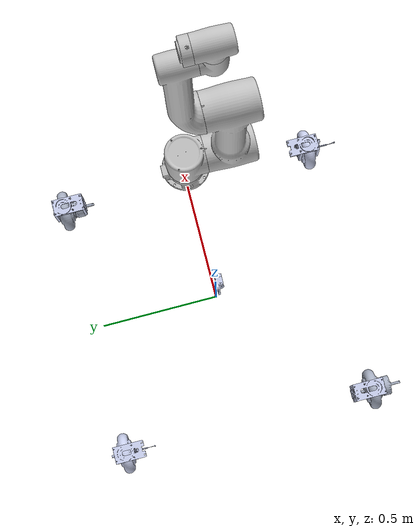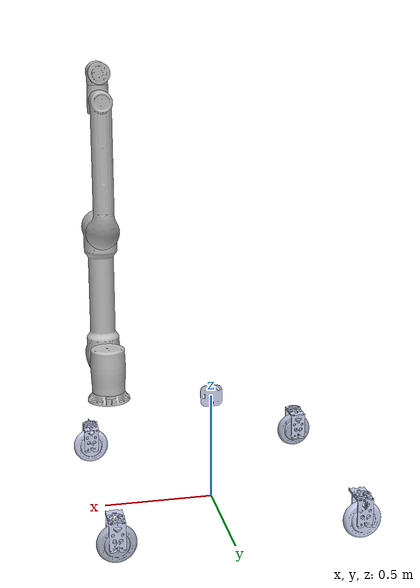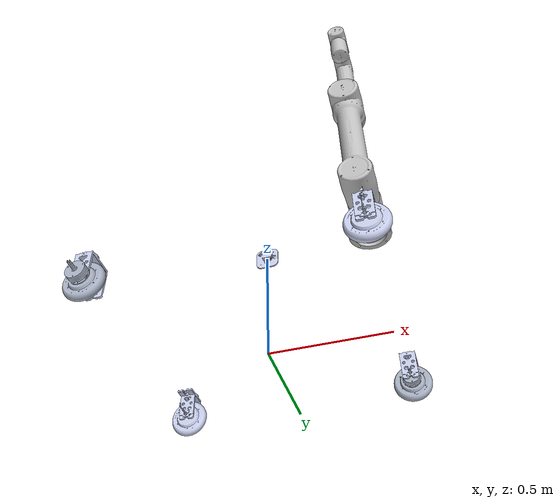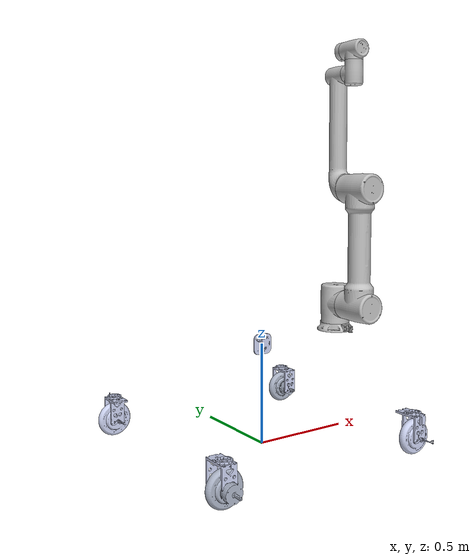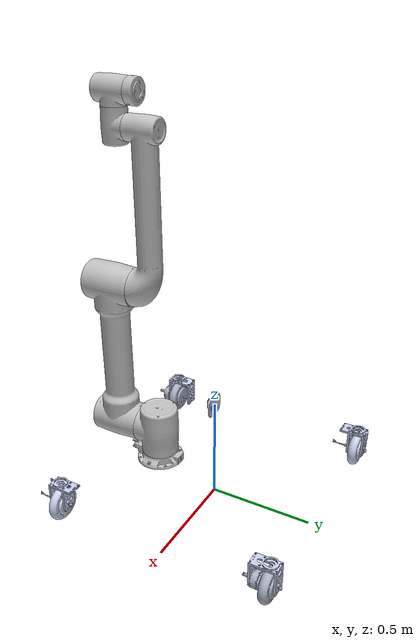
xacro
<?xml version="1.0" encoding="utf-8"?>
<robot
  name="robot_model" xmlns:xacro="http://ros.org/wiki/xacro">

  <link name="base_footprint">
  </link>

  <joint name="base_footprint2base_link" type="fixed">
    <origin xyz="0 0 0.5" rpy="0 0 0"/>
    <parent link="base_footprint"/>
    <child link="base_link"/>
    <axis xyz="0 0 0"/>
  </joint>

  <link
    name="base_link">
    <inertial>
      <origin
        xyz="-0.00893431238084795 -0.00410685218850798 -0.126974415298966"
        rpy="0 0 0" />
      <mass
        value="60.6584049873887" />
      <inertia
        ixx="1.93063361069271"
        ixy="-1.08148006992139E-05"
        ixz="-0.000147443513716209"
        iyy="2.82233947881137"
        iyz="3.80713670524455E-06"
        izz="4.57189084727919" />
    </inertial>
    <visual>
      <origin
        xyz="0 0 0"
        rpy="0 0 0" />
      <geometry>
        <mesh
          filename="package://robot_model/meshes/base_link.STL" />
      </geometry>
      <material
        name="">
        <color
          rgba="0.792156862745098 0.819607843137255 0.933333333333333 1" />
      </material>
    </visual>
    <collision>
      <origin
        xyz="0 0 0"
        rpy="0 0 0" />
      <geometry>
        <mesh
          filename="package://robot_model/meshes/base_link.STL" />
      </geometry>
    </collision>
  </link>
  <link
    name="arm_link0">
    <inertial>
      <origin
        xyz="-1.85892599924298E-07 -0.00115098665543706 0.0188300807306432"
        rpy="0 0 0" />
      <mass
        value="0.655152540803042" />
      <inertia
        ixx="0.00156276083969846"
        ixy="-3.36599648618771E-08"
        ixz="-1.62894681484622E-10"
        iyy="0.00121051829401654"
        iyz="-5.21192954217806E-06"
        izz="0.00262778163467102" />
    </inertial>
    <visual>
      <origin
        xyz="0 0 0"
        rpy="0 0 0" />
      <geometry>
        <mesh
          filename="package://robot_model/meshes/arm_link0.STL" />
      </geometry>
      <material
        name="">
        <color
          rgba="0.752941176470588 0.752941176470588 0.752941176470588 1" />
      </material>
    </visual>
    <collision>
      <origin
        xyz="0 0 0"
        rpy="0 0 0" />
      <geometry>
        <mesh
          filename="package://robot_model/meshes/arm_link0.STL" />
      </geometry>
    </collision>
  </link>
  <joint
    name="arm_joint0"
    type="fixed">
    <origin
      xyz="0.469251651718155 0 0.02"
      rpy="0 0 0" />
    <parent
      link="base_link" />
    <child
      link="arm_link0" />
    <axis
      xyz="0 0 0" />
  </joint>
  <link
    name="arm_link1">
    <inertial>
      <origin
        xyz="6.56593143250062E-06 -0.00217986182575047 -0.00131736708112296"
        rpy="0 0 0" />
      <mass
        value="3.60449209211676" />
      <inertia
        ixx="0.0126654074039028"
        ixy="-2.62089433741316E-07"
        ixz="-1.31830270669369E-07"
        iyy="0.0127154549514285"
        iyz="0.000389410015223875"
        izz="0.0111093940722602" />
    </inertial>
    <visual>
      <origin
        xyz="0 0 0"
        rpy="0 0 0" />
      <geometry>
        <mesh
          filename="package://robot_model/meshes/arm_link1.STL" />
      </geometry>
      <material
        name="">
        <color
          rgba="0.752941176470588 0.752941176470588 0.752941176470588 1" />
      </material>
    </visual>
    <collision>
      <origin
        xyz="0 0 0"
        rpy="0 0 0" />
      <geometry>
        <mesh
          filename="package://robot_model/meshes/arm_link1.STL" />
      </geometry>
    </collision>
  </link>
  <joint
    name="arm_joint1"
    type="revolute">
    <origin
      xyz="0 0 0.14261"
      rpy="0 0 0" />
    <parent
      link="arm_link0" />
    <child
      link="arm_link1" />
    <axis
      xyz="0 0 -1" />
    <limit
      lower="-4.71"
      upper="4.71"
      effort="160"
      velocity="2.09" />
  </joint>
  <link
    name="arm_link2">
    <inertial>
      <origin
        xyz="0.297295860029644 -7.22116929952055E-06 0.181245687804858"
        rpy="0 0 0" />
      <mass
        value="12.2380791922919" />
      <inertia
        ixx="0.0343806292140874"
        ixy="5.21480259951953E-07"
        ixz="-4.57209805955594E-06"
        iyy="0.119109154320758"
        iyz="3.32647013373687E-10"
        izz="0.116279406836501" />
    </inertial>
    <visual>
      <origin
        xyz="0 0 0"
        rpy="0 0 0" />
      <geometry>
        <mesh
          filename="package://robot_model/meshes/arm_link2.STL" />
      </geometry>
      <material
        name="">
        <color
          rgba="0.752941176470588 0.752941176470588 0.752941176470588 1" />
      </material>
    </visual>
    <collision>
      <origin
        xyz="0 0 0"
        rpy="0 0 0" />
      <geometry>
        <mesh
          filename="package://robot_model/meshes/arm_link2.STL" />
      </geometry>
    </collision>
  </link>
  <joint
    name="arm_joint2"
    type="revolute">
    <origin
      xyz="0 0 0"
      rpy="1.5708 -1.5708 0" />
    <parent
      link="arm_link1" />
    <child
      link="arm_link2" />
    <axis
      xyz="0 0 -1" />
    <limit
      lower="-1.48"
      upper="4.63"
      effort="159.24"
      velocity="2.09" />
  </joint>
  <link
    name="arm_link3">
    <inertial>
      <origin
        xyz="0.279323373643594 -2.05269174754497E-05 -0.0168804752155597"
        rpy="0 0 0" />
      <mass
        value="4.95956568648557" />
      <inertia
        ixx="0.0070392604484286"
        ixy="-1.10355720175606E-06"
        ixz="-0.00581502732927868"
        iyy="0.121787936376111"
        iyz="-1.14663299532286E-07"
        izz="0.121496286554897" />
    </inertial>
    <visual>
      <origin
        xyz="0 0 0"
        rpy="0 0 0" />
      <geometry>
        <mesh
          filename="package://robot_model/meshes/arm_link3.STL" />
      </geometry>
      <material
        name="">
        <color
          rgba="0.752941176470588 0.752941176470588 0.752941176470588 1" />
      </material>
    </visual>
    <collision>
      <origin
        xyz="0 0 0"
        rpy="0 0 0" />
      <geometry>
        <mesh
          filename="package://robot_model/meshes/arm_link3.STL" />
      </geometry>
    </collision>
  </link>
  <joint
    name="arm_joint3"
    type="revolute">
    <origin
      xyz="0.59497 -2.3063E-05 0"
      rpy="-3.1416 0 0" />
    <parent
      link="arm_link2" />
    <child
      link="arm_link3" />
    <axis
      xyz="0 0 1" />
    <limit
      lower="-3.05"
      upper="3.05"
      effort="82.38"
      velocity="2.09" />
  </joint>
  <link
    name="arm_link4">
    <inertial>
      <origin
        xyz="-2.96649884686251E-05 -0.002621237975338 0.124278582104445"
        rpy="0 0 0" />
      <mass
        value="0.838886390347174" />
      <inertia
        ixx="0.00145630007823869"
        ixy="-1.63799148217372E-09"
        ixz="6.54274434315661E-09"
        iyy="0.00098615661868495"
        iyz="3.14742670990643E-06"
        izz="0.0014481473926624" />
    </inertial>
    <visual>
      <origin
        xyz="0 0 0"
        rpy="0 0 0" />
      <geometry>
        <mesh
          filename="package://robot_model/meshes/arm_link4.STL" />
      </geometry>
      <material
        name="">
        <color
          rgba="0.752941176470588 0.752941176470588 0.752941176470588 1" />
      </material>
    </visual>
    <collision>
      <origin
        xyz="0 0 0"
        rpy="0 0 0" />
      <geometry>
        <mesh
          filename="package://robot_model/meshes/arm_link4.STL" />
      </geometry>
    </collision>
  </link>
  <joint
    name="arm_joint4"
    type="revolute">
    <origin
      xyz="0.574643539264634 -4.5712785851082E-05 0"
      rpy="-3.14159265358979 0 -1.5707963267949" />
    <parent
      link="arm_link3" />
    <child
      link="arm_link4" />
    <axis
      xyz="0 0 1" />
    <limit
      lower="-1.48"
      upper="4.63"
      effort="13.44"
      velocity="3.14" />
  </joint>
  <link
    name="arm_link5">
    <inertial>
      <origin
        xyz="1.93547867122223E-07 0.12717221555251 -0.0011354400305007"
        rpy="0 0 0" />
      <mass
        value="0.838308466445079" />
      <inertia
        ixx="0.00145558323350275"
        ixy="4.49383625882674E-09"
        ixz="6.58455661563857E-09"
        iyy="0.00100189729657383"
        iyz="-1.22072724248397E-06"
        izz="0.00144948878190334" />
    </inertial>
    <visual>
      <origin
        xyz="0 0 0"
        rpy="0 0 0" />
      <geometry>
        <mesh
          filename="package://robot_model/meshes/arm_link5.STL" />
      </geometry>
      <material
        name="">
        <color
          rgba="0.752941176470588 0.752941176470588 0.752941176470588 1" />
      </material>
    </visual>
    <collision>
      <origin
        xyz="0 0 0"
        rpy="0 0 0" />
      <geometry>
        <mesh
          filename="package://robot_model/meshes/arm_link5.STL" />
      </geometry>
    </collision>
  </link>
  <joint
    name="arm_joint5"
    type="revolute">
    <origin
      xyz="-2.9874E-05 -0.11445 0"
      rpy="1.5708 0 0" />
    <parent
      link="arm_link4" />
    <child
      link="arm_link5" />
    <axis
      xyz="0 0 1" />
    <limit
      lower="-4.71"
      upper="4.71"
      effort="12.06"
      velocity="3.14" />
  </joint>
  <link
    name="arm_link6">
    <inertial>
      <origin
        xyz="-4.913320295441E-05 0.000344891733140895 -0.0420522876754666"
        rpy="0 0 0" />
      <mass
        value="0.18561500243153" />
      <inertia
        ixx="0.000124025995543342"
        ixy="-5.32236134535511E-08"
        ixz="2.56685033045269E-08"
        iyy="0.000124255184258649"
        iyz="-2.96050182378096E-07"
        izz="0.000211261380376879" />
    </inertial>
    <visual>
      <origin
        xyz="0 0 0"
        rpy="0 0 0" />
      <geometry>
        <mesh
          filename="package://robot_model/meshes/arm_link6.STL" />
      </geometry>
      <material
        name="">
        <color
          rgba="0.752941176470588 0.752941176470588 0.752941176470588 1" />
      </material>
    </visual>
    <collision>
      <origin
        xyz="0 0 0"
        rpy="0 0 0" />
      <geometry>
        <mesh
          filename="package://robot_model/meshes/arm_link6.STL" />
      </geometry>
    </collision>
  </link>
  <joint
    name="joint_link6"
    type="revolute">
    <origin
      xyz="0 0 0"
      rpy="1.5707963267949 0 0" />
    <parent
      link="arm_link5" />
    <child
      link="arm_link6" />
    <axis
      xyz="0 0 1" />
    <limit
      lower="-4.71"
      upper="4.71"
      effort="5.46"
      velocity="3.14" />
  </joint>
  <link
    name="turn_link1">
    <inertial>
      <origin
        xyz="4.78495572497906E-06 -0.00533710570631507 -0.0635741590696821"
        rpy="0 0 0" />
      <mass
        value="0.216185282126058" />
      <inertia
        ixx="0.00026246870165202"
        ixy="9.23224201425085E-12"
        ixz="2.5732826757356E-08"
        iyy="0.000263417398814689"
        iyz="1.65492626580328E-06"
        izz="0.00019815950604125" />
    </inertial>
    <visual>
      <origin
        xyz="0 0 0"
        rpy="0 0 0" />
      <geometry>
        <mesh
          filename="package://robot_model/meshes/turn_link1.STL" />
      </geometry>
      <material
        name="">
        <color
          rgba="0.792156862745098 0.819607843137255 0.933333333333333 1" />
      </material>
    </visual>
    <collision>
      <origin
        xyz="0 0 0"
        rpy="0 0 0" />
      <geometry>
        <mesh
          filename="package://robot_model/meshes/turn_link1.STL" />
      </geometry>
    </collision>
  </link>
  <joint
    name="joint_turn1"
    type="revolute">
    <origin
      xyz="0.51025165171796 -0.531954815283265 -0.415396961061793"
      rpy="3.14159265358979 0 0" />
    <parent
      link="base_link" />
    <child
      link="turn_link1" />
    <axis
      xyz="0 0 1" />
    <limit
      lower="-6.28"
      upper="6.28"
      effort="24"
      velocity="392.7" />
  </joint>
  <link
    name="wheel_link1">
    <inertial>
      <origin
        xyz="-9.23771441119214E-07 -1.45099633808154E-07 9.05810189412715E-05"
        rpy="0 0 0" />
      <mass
        value="1.00158503747343" />
      <inertia
        ixx="0.00173475166931306"
        ixy="9.86515466133112E-10"
        ixz="-1.16441874880337E-08"
        iyy="0.00173476885800945"
        iyz="1.80126237976292E-09"
        izz="0.00304652603387399" />
    </inertial>
    <visual>
      <origin
        xyz="0 0 0"
        rpy="0 0 0" />
      <geometry>
        <mesh
          filename="package://robot_model/meshes/wheel_link1.STL" />
      </geometry>
      <material
        name="">
        <color
          rgba="0.792156862745098 0.819607843137255 0.933333333333333 1" />
      </material>
    </visual>
    <collision>
      <origin
        xyz="0 0 0"
        rpy="0 0 0" />
      <geometry>
        <mesh
          filename="package://robot_model/meshes/wheel_link1.STL" />
      </geometry>
    </collision>
  </link>
  <joint
    name="joint_wheel1"
    type="continuous">
    <origin
      xyz="0 0 0"
      rpy="1.5707963267949 1.5707963267949 0" />
    <parent
      link="turn_link1" />
    <child
      link="wheel_link1" />
    <axis
      xyz="0 0 -1" />
  </joint>
  <link
    name="turn_link2">
    <inertial>
      <origin
        xyz="2.83465867445543E-09 0.0200042619428674 -0.0631120030681842"
        rpy="0 0 0" />
      <mass
        value="0.212907250011006" />
      <inertia
        ixx="0.00026151235533371"
        ixy="9.23224334742709E-12"
        ixz="2.9018916968451E-12"
        iyy="0.000262449337362649"
        iyz="-1.65492626580359E-06"
        izz="0.000198093157038937" />
    </inertial>
    <visual>
      <origin
        xyz="0 0 0"
        rpy="0 0 0" />
      <geometry>
        <mesh
          filename="package://robot_model/meshes/turn_link2.STL" />
      </geometry>
      <material
        name="">
        <color
          rgba="0.792156862745098 0.819607843137255 0.933333333333333 1" />
      </material>
    </visual>
    <collision>
      <origin
        xyz="0 0 0"
        rpy="0 0 0" />
      <geometry>
        <mesh
          filename="package://robot_model/meshes/turn_link2.STL" />
      </geometry>
    </collision>
  </link>
  <joint
    name="joint_turn2"
    type="revolute">
    <origin
      xyz="0.510251651718055 0.531954815283242 -0.415396961061802"
      rpy="-3.14159265358979 0 0" />
    <parent
      link="base_link" />
    <child
      link="turn_link2" />
    <axis
      xyz="0 0 1" />
    <limit
      lower="-6.28"
      upper="6.28"
      effort="24"
      velocity="392.7" />
  </joint>
  <link
    name="wheel_link2">
    <inertial>
      <origin
        xyz="7.83556561412269E-07 8.00142584300723E-07 -0.0108319687597789"
        rpy="0 0 0" />
      <mass
        value="2.70084577274723" />
      <inertia
        ixx="0.00550122561756971"
        ixy="3.26944950597682E-08"
        ixz="-4.5961962270357E-07"
        iyy="0.00550150558695668"
        iyz="8.19279366600689E-08"
        izz="0.00712927200457169" />
    </inertial>
    <visual>
      <origin
        xyz="0 0 0"
        rpy="0 0 0" />
      <geometry>
        <mesh
          filename="package://robot_model/meshes/wheel_link2.STL" />
      </geometry>
      <material
        name="">
        <color
          rgba="0.666666666666667 0.698039215686274 0.768627450980392 1" />
      </material>
    </visual>
    <collision>
      <origin
        xyz="0 0 0"
        rpy="0 0 0" />
      <geometry>
        <mesh
          filename="package://robot_model/meshes/wheel_link2.STL" />
      </geometry>
    </collision>
  </link>
  <joint
    name="joint_wheel2"
    type="continuous">
    <origin
      xyz="0 0 0"
      rpy="1.5707963267949 1.5707963267949 0" />
    <parent
      link="turn_link2" />
    <child
      link="wheel_link2" />
    <axis
      xyz="0 0 -1" />
  </joint>
  <link
    name="turn_link3">
    <inertial>
      <origin
        xyz="-4.78495572542315E-06 0.00533710570631452 -0.0635741590696814"
        rpy="0 0 0" />
      <mass
        value="0.216185282126058" />
      <inertia
        ixx="0.000262468701652019"
        ixy="9.23224218417622E-12"
        ixz="-2.57328267574584E-08"
        iyy="0.000263417398814688"
        iyz="-1.65492626580302E-06"
        izz="0.00019815950604125" />
    </inertial>
    <visual>
      <origin
        xyz="0 0 0"
        rpy="0 0 0" />
      <geometry>
        <mesh
          filename="package://robot_model/meshes/turn_link3.STL" />
      </geometry>
      <material
        name="">
        <color
          rgba="0.792156862745098 0.819607843137255 0.933333333333333 1" />
      </material>
    </visual>
    <collision>
      <origin
        xyz="0 0 0"
        rpy="0 0 0" />
      <geometry>
        <mesh
          filename="package://robot_model/meshes/turn_link3.STL" />
      </geometry>
    </collision>
  </link>
  <joint
    name="joint_turn3"
    type="revolute">
    <origin
      xyz="-0.551748348281648 0.531954815283274 -0.415396961061793"
      rpy="3.14159265358979 0 0" />
    <parent
      link="base_link" />
    <child
      link="turn_link3" />
    <axis
      xyz="0 0 1" />
    <limit
      lower="-6.28"
      upper="6.28"
      effort="24"
      velocity="392.7" />
  </joint>
  <link
    name="wheel_link3">
    <inertial>
      <origin
        xyz="-9.23785491213636E-07 -1.45096786585697E-07 9.05810052858058E-05"
        rpy="0 0 0" />
      <mass
        value="1.00158503687007" />
      <inertia
        ixx="0.00173475166902223"
        ixy="9.86445932143399E-10"
        ixz="-1.16438750737094E-08"
        iyy="0.00173476885738913"
        iyz="1.80119923303238E-09"
        izz="0.00304652603351639" />
    </inertial>
    <visual>
      <origin
        xyz="0 0 0"
        rpy="0 0 0" />
      <geometry>
        <mesh
          filename="package://robot_model/meshes/wheel_link3.STL" />
      </geometry>
      <material
        name="">
        <color
          rgba="0.792156862745098 0.819607843137255 0.933333333333333 1" />
      </material>
    </visual>
    <collision>
      <origin
        xyz="0 0 0"
        rpy="0 0 0" />
      <geometry>
        <mesh
          filename="package://robot_model/meshes/wheel_link3.STL" />
      </geometry>
    </collision>
  </link>
  <joint
    name="joint_wheel3"
    type="continuous">
    <origin
      xyz="0 0 0"
      rpy="1.5707963267949 1.5707963267949 0" />
    <parent
      link="turn_link3" />
    <child
      link="wheel_link3" />
    <axis
      xyz="0 0 -1" />
  </joint>
  <link
    name="turn_link4">
    <inertial>
      <origin
        xyz="-2.83465928507809E-09 -0.0200042619428677 -0.0631120030681847"
        rpy="0 0 0" />
      <mass
        value="0.212907250011006" />
      <inertia
        ixx="0.000261512355333709"
        ixy="9.23224360383132E-12"
        ixz="-2.90189147530696E-12"
        iyy="0.000262449337362648"
        iyz="1.65492626580328E-06"
        izz="0.000198093157038937" />
    </inertial>
    <visual>
      <origin
        xyz="0 0 0"
        rpy="0 0 0" />
      <geometry>
        <mesh
          filename="package://robot_model/meshes/turn_link4.STL" />
      </geometry>
      <material
        name="">
        <color
          rgba="0.792156862745098 0.819607843137255 0.933333333333333 1" />
      </material>
    </visual>
    <collision>
      <origin
        xyz="0 0 0"
        rpy="0 0 0" />
      <geometry>
        <mesh
          filename="package://robot_model/meshes/turn_link4.STL" />
      </geometry>
    </collision>
  </link>
  <joint
    name="joint_turn4"
    type="revolute">
    <origin
      xyz="-0.55175 -0.53195 -0.4154"
      rpy="-3.1416 0 0" />
    <parent
      link="base_link" />
    <child
      link="turn_link4" />
    <axis
      xyz="0 0 1" />
    <limit
      lower="-6.28"
      upper="6.28"
      effort="24"
      velocity="392.7" />
  </joint>
  <link
    name="wheel_link4">
    <inertial>
      <origin
        xyz="7.83556146188857E-07 8.00143050705415E-07 -0.0108319687590166"
        rpy="0 0 0" />
      <mass
        value="2.70084577283169" />
      <inertia
        ixx="0.00550122561765213"
        ixy="3.26945128080932E-08"
        ixz="-4.59619591093497E-07"
        iyy="0.0055015055870359"
        iyz="8.19279026897935E-08"
        izz="0.00712927200460767" />
    </inertial>
    <visual>
      <origin
        xyz="0 0 0"
        rpy="0 0 0" />
      <geometry>
        <mesh
          filename="package://robot_model/meshes/wheel_link4.STL" />
      </geometry>
      <material
        name="">
        <color
          rgba="0.666666666666667 0.698039215686274 0.768627450980392 1" />
      </material>
    </visual>
    <collision>
      <origin
        xyz="0 0 0"
        rpy="0 0 0" />
      <geometry>
        <mesh
          filename="package://robot_model/meshes/wheel_link4.STL" />
      </geometry>
    </collision>
  </link>
  <joint
    name="joint_wheel4"
    type="continuous">
    <origin
      xyz="0 0 0"
      rpy="1.57079632679489 1.5707963267949 0" />
    <parent
      link="turn_link4" />
    <child
      link="wheel_link4" />
    <axis
      xyz="0 0 -1" />
  </joint>
<transmission name="tran_turn1">
  <type>transmission_interface/SimpleTransmission</type>
    <joint name="joint_turn1">
    <hardwareInterface>hardware_interface/EffortJointInterface</hardwareInterface>
    </joint>
    <actuator name="motorturn1">
    <hardwareInterface>hardware_interface/EffortJointInterface</hardwareInterface>
    <mechanicalReduction>1</mechanicalReduction>
    </actuator>
</transmission>

<transmission name="tran_turn2">
<type>transmission_interface/SimpleTransmission</type>
<joint name="joint_turn2">
<hardwareInterface>hardware_interface/EffortJointInterface</hardwareInterface>
</joint>
<actuator name="motorturn2">
<hardwareInterface>hardware_interface/EffortJointInterface</hardwareInterface>
<mechanicalReduction>1</mechanicalReduction>
</actuator>
</transmission>

<transmission name="tran_turn3">
<type>transmission_interface/SimpleTransmission</type>
<joint name="joint_turn3">
<hardwareInterface>hardware_interface/EffortJointInterface</hardwareInterface>
</joint>
<actuator name="motorturn3">
<hardwareInterface>hardware_interface/EffortJointInterface</hardwareInterface>
<mechanicalReduction>1</mechanicalReduction>
</actuator>
</transmission>

<transmission name="tran_turn4">
<type>transmission_interface/SimpleTransmission</type>
<joint name="joint_turn4">
<hardwareInterface>hardware_interface/EffortJointInterface</hardwareInterface>
</joint>
<actuator name="motorturn4">
<hardwareInterface>hardware_interface/EffortJointInterface</hardwareInterface>
<mechanicalReduction>1</mechanicalReduction>
</actuator>
</transmission>

<transmission name="tran_wheel1">
<type>transmission_interface/SimpleTransmission</type>
<joint name="joint_wheel1">
<hardwareInterface>hardware_interface/EffortJointInterface</hardwareInterface>
</joint>
<actuator name="motorwheel1">
<hardwareInterface>hardware_interface/EffortJointInterface</hardwareInterface>
<mechanicalReduction>1</mechanicalReduction>
</actuator>
</transmission>

<transmission name="tran_wheel2">
<type>transmission_interface/SimpleTransmission</type>
<joint name="joint_wheel2">
<hardwareInterface>hardware_interface/EffortJointInterface</hardwareInterface>
</joint>
<actuator name="motorwheel2">
<hardwareInterface>hardware_interface/EffortJointInterface</hardwareInterface>
<mechanicalReduction>1</mechanicalReduction>
</actuator>
</transmission>

<transmission name="tran_wheel3">
<type>transmission_interface/SimpleTransmission</type>
<joint name="joint_wheel3">
<hardwareInterface>hardware_interface/EffortJointInterface</hardwareInterface>
</joint>
<actuator name="motorwheel3">
<hardwareInterface>hardware_interface/EffortJointInterface</hardwareInterface>
<mechanicalReduction>1</mechanicalReduction>
</actuator>
</transmission>

<transmission name="tran_wheel4">
<type>transmission_interface/SimpleTransmission</type>
<joint name="joint_wheel4">
<hardwareInterface>hardware_interface/EffortJointInterface</hardwareInterface>
</joint>
<actuator name="motorwheel4">
<hardwareInterface>hardware_interface/EffortJointInterface</hardwareInterface>
<mechanicalReduction>1</mechanicalReduction>
</actuator>
</transmission>

<gazebo>

  <plugin name="gazebo_ros_control" filename="libgazebo_ros_control.so">
    <robotNamespace>/agv_sim</robotNamespace>
    <robotSimType>gazebo_ros_control/DefaultRobotHWSim</robotSimType>
  </plugin>

</gazebo>

</robot>
